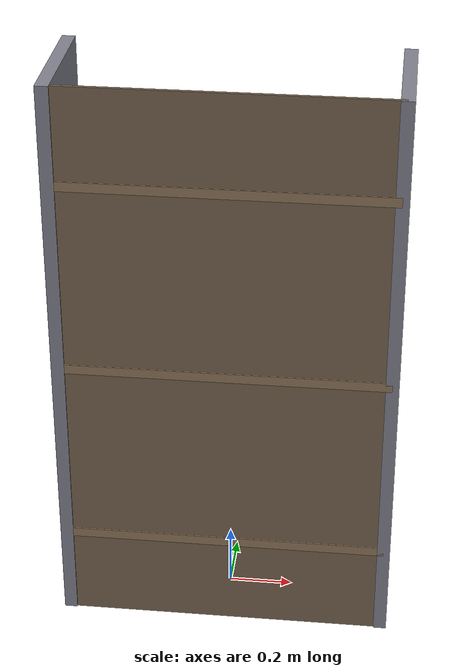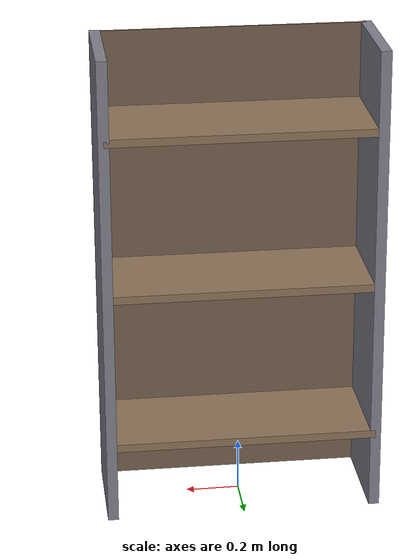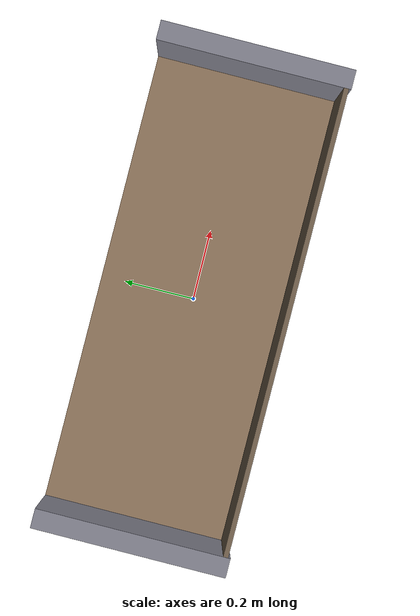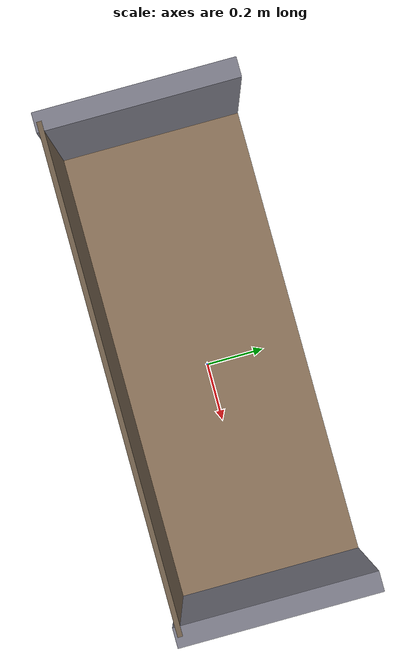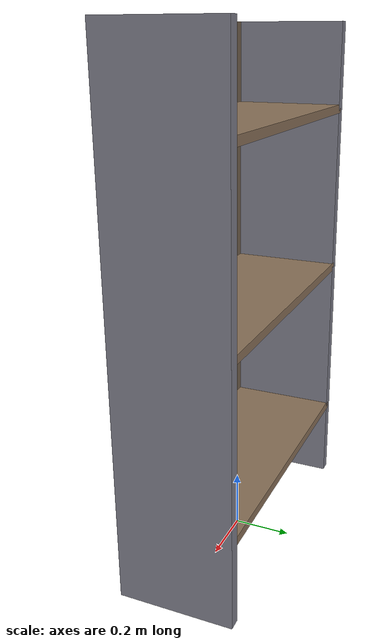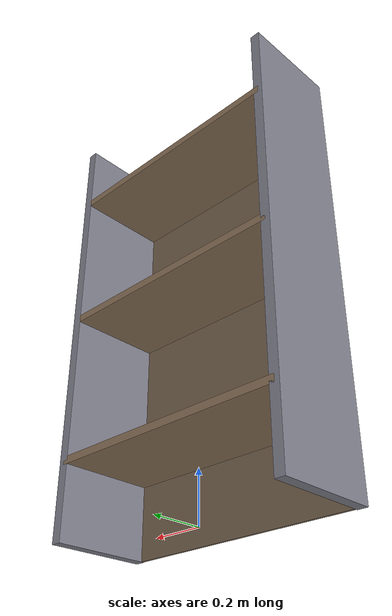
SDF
<?xml version="1.0" encoding="utf-8"?>
<!--
  Shelf model — a 3-level industrial shelf unit for warehouse scenarios.
  Dimensions: 1.0m (W) × 0.4m (D) × 1.8m (H)
  Each shelf spaced 0.6m apart vertically.
-->
<sdf version="1.9">
  <model name="shelf">

    <!-- Left upright pillar -->
    <link name="pillar_left">
      <pose>-0.5 0 0.9 0 0 0</pose>
      <inertial>
        <mass>5.0</mass>
        <inertia>
          <ixx>1.5</ixx> <ixy>0.0</ixy> <ixz>0.0</ixz>
          <iyy>1.5</iyy> <iyz>0.0</iyz>
          <izz>0.01</izz>
        </inertia>
      </inertial>
      <visual name="pillar_left_visual">
        <geometry>
          <box>
            <size>0.04 0.40 1.80</size>
          </box>
        </geometry>
        <material>
          <ambient>0.5 0.5 0.55 1</ambient>
          <diffuse>0.5 0.5 0.55 1</diffuse>
        </material>
      </visual>
      <collision name="pillar_left_collision">
        <geometry>
          <box>
            <size>0.04 0.40 1.80</size>
          </box>
        </geometry>
      </collision>
    </link>

    <!-- Right upright pillar -->
    <link name="pillar_right">
      <pose>0.5 0 0.9 0 0 0</pose>
      <inertial>
        <mass>5.0</mass>
        <inertia>
          <ixx>1.5</ixx> <ixy>0.0</ixy> <ixz>0.0</ixz>
          <iyy>1.5</iyy> <iyz>0.0</iyz>
          <izz>0.01</izz>
        </inertia>
      </inertial>
      <visual name="pillar_right_visual">
        <geometry>
          <box>
            <size>0.04 0.40 1.80</size>
          </box>
        </geometry>
        <material>
          <ambient>0.5 0.5 0.55 1</ambient>
          <diffuse>0.5 0.5 0.55 1</diffuse>
        </material>
      </visual>
      <collision name="pillar_right_collision">
        <geometry>
          <box>
            <size>0.04 0.40 1.80</size>
          </box>
        </geometry>
      </collision>
    </link>

    <!-- Level 1 shelf (bottom) -->
    <link name="shelf_1">
      <pose>0 0 0.3 0 0 0</pose>
      <inertial>
        <mass>3.0</mass>
        <inertia>
          <ixx>0.5</ixx> <ixy>0.0</ixy> <ixz>0.0</ixz>
          <iyy>0.04</iyy> <iyz>0.0</iyz>
          <izz>0.5</izz>
        </inertia>
      </inertial>
      <visual name="shelf_1_visual">
        <geometry>
          <box>
            <size>1.00 0.40 0.03</size>
          </box>
        </geometry>
        <material>
          <ambient>0.55 0.45 0.35 1</ambient>
          <diffuse>0.55 0.45 0.35 1</diffuse>
        </material>
      </visual>
      <collision name="shelf_1_collision">
        <geometry>
          <box>
            <size>1.00 0.40 0.03</size>
          </box>
        </geometry>
      </collision>
    </link>

    <!-- Level 2 shelf (middle) -->
    <link name="shelf_2">
      <pose>0 0 0.9 0 0 0</pose>
      <inertial>
        <mass>3.0</mass>
        <inertia>
          <ixx>0.5</ixx> <ixy>0.0</ixy> <ixz>0.0</ixz>
          <iyy>0.04</iyy> <iyz>0.0</iyz>
          <izz>0.5</izz>
        </inertia>
      </inertial>
      <visual name="shelf_2_visual">
        <geometry>
          <box>
            <size>1.00 0.40 0.03</size>
          </box>
        </geometry>
        <material>
          <ambient>0.55 0.45 0.35 1</ambient>
          <diffuse>0.55 0.45 0.35 1</diffuse>
        </material>
      </visual>
      <collision name="shelf_2_collision">
        <geometry>
          <box>
            <size>1.00 0.40 0.03</size>
          </box>
        </geometry>
      </collision>
    </link>

    <!-- Level 3 shelf (top) -->
    <link name="shelf_3">
      <pose>0 0 1.5 0 0 0</pose>
      <inertial>
        <mass>3.0</mass>
        <inertia>
          <ixx>0.5</ixx> <ixy>0.0</ixy> <ixz>0.0</ixz>
          <iyy>0.04</iyy> <iyz>0.0</iyz>
          <izz>0.5</izz>
        </inertia>
      </inertial>
      <visual name="shelf_3_visual">
        <geometry>
          <box>
            <size>1.00 0.40 0.03</size>
          </box>
        </geometry>
        <material>
          <ambient>0.55 0.45 0.35 1</ambient>
          <diffuse>0.55 0.45 0.35 1</diffuse>
        </material>
      </visual>
      <collision name="shelf_3_collision">
        <geometry>
          <box>
            <size>1.00 0.40 0.03</size>
          </box>
        </geometry>
      </collision>
    </link>

    <!-- Back panel -->
    <link name="back_panel">
      <pose>0 -0.19 0.9 0 0 0</pose>
      <inertial>
        <mass>2.0</mass>
        <inertia>
          <ixx>0.5</ixx> <ixy>0.0</ixy> <ixz>0.0</ixz>
          <iyy>0.01</iyy> <iyz>0.0</iyz>
          <izz>0.5</izz>
        </inertia>
      </inertial>
      <visual name="back_panel_visual">
        <geometry>
          <box>
            <size>1.00 0.01 1.80</size>
          </box>
        </geometry>
        <material>
          <ambient>0.45 0.38 0.3 1</ambient>
          <diffuse>0.45 0.38 0.3 1</diffuse>
        </material>
      </visual>
      <collision name="back_panel_collision">
        <geometry>
          <box>
            <size>1.00 0.01 1.80</size>
          </box>
        </geometry>
      </collision>
    </link>

  </model>
</sdf>
